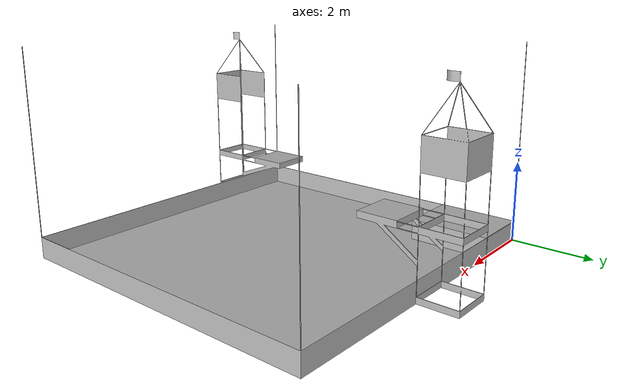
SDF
<?xml version='1.0'?>
<sdf version='1.9'>
  <model name='arena_spawn'>
    <link name='link_0'>
      <inertial>
        <mass>15</mass>
        <inertia>
          <ixx>2.0</ixx>
          <ixy>0.0</ixy>
          <ixz>0.0</ixz>
          <iyy>2.0</iyy>
          <iyz>0.0</iyz>
          <izz>2.0</izz>
        </inertia>
      </inertial>
      <self_collide>true</self_collide>
      <enable_wind>false</enable_wind>
      <kinematic>false</kinematic>
      <pose>0 0 0 0 0 0</pose>
      <visual name='visual'>
        <pose>8 0 0 0 0 9.422</pose>
        <geometry>
          <mesh>
            <uri>model://arena_spawn/meshes/Arena.obj</uri>
            <scale>1 1 1</scale>
          </mesh>
        </geometry>
        <transparency>0</transparency>
        <cast_shadows>true</cast_shadows>
      </visual>
      <collision name='collision'>
        <laser_retro>0</laser_retro>
        <max_contacts>10</max_contacts>
        <pose>8 0 0 0 0 9.422</pose>
        <geometry>
          <mesh>
            <uri>model://arena_spawn/meshes/Arena.obj</uri>
            <scale>1 1 1</scale>
          </mesh>
        </geometry>
        <surface>
          <friction>
            <ode>
              <mu>1</mu>
              <mu2>1</mu2>
              <fdir1>0 0 0</fdir1>
              <slip1>0</slip1>
              <slip2>0</slip2>
            </ode>
            <torsional>
              <coefficient>1</coefficient>
              <patch_radius>100</patch_radius>
              <surface_radius>100</surface_radius>
              <use_patch_radius>true</use_patch_radius>
              <ode>
                <slip>0</slip>
              </ode>
            </torsional>
          </friction>
          <bounce>
            <restitution_coefficient>0</restitution_coefficient>
            <threshold>1e+06</threshold>
          </bounce>
          <contact>
            <collide_without_contact>false</collide_without_contact>
            <collide_without_contact_bitmask>1</collide_without_contact_bitmask>
            <collide_bitmask>1</collide_bitmask>
            <ode>
              <soft_cfm>0</soft_cfm>
              <soft_erp>0.2</soft_erp>
              <kp>1e+13</kp>
              <kd>1</kd>
              <max_vel>0.01</max_vel>
              <min_depth>0</min_depth>
            </ode>
            <bullet>
              <split_impulse>true</split_impulse>
              <split_impulse_penetration_threshold>-0.01</split_impulse_penetration_threshold>
              <soft_cfm>0</soft_cfm>
              <soft_erp>0.2</soft_erp>
              <kp>1e+13</kp>
              <kd>1</kd>
            </bullet>
          </contact>
        </surface>
      </collision>
    </link>
    <link name='link_4'>
      <inertial>
        <mass>1</mass>
        <inertia>
          <ixx>0.1</ixx>
          <ixy>0.0</ixy>
          <ixz>0.0</ixz>
          <iyy>0.1</iyy>
          <iyz>0.0</iyz>
          <izz>0.1</izz>
        </inertia>
      </inertial>
      <self_collide>true</self_collide>
      <enable_wind>false</enable_wind>
      <kinematic>false</kinematic>
      <pose>0 0 0 0 0 0</pose>
      <visual name='visual'>
        <pose>8 0 0 0 0 9.422</pose>
        <geometry>
          <mesh>
            <uri>model://arena_spawn/meshes/high_base_left.obj</uri>
            <scale>1 1 1</scale>
          </mesh>
        </geometry>
        <transparency>0</transparency>
        <cast_shadows>true</cast_shadows>
      </visual>
      <collision name='collision'>
        <laser_retro>0</laser_retro>
        <max_contacts>10</max_contacts>
        <pose>8 0 0 0 0 9.422</pose>
        <geometry>
          <mesh>
            <uri>model://arena_spawn/meshes/high_base_left.obj</uri>
            <scale>1 1 1</scale>
          </mesh>
        </geometry>
        <surface>
          <friction>
            <ode>
              <mu>1</mu>
              <mu2>1</mu2>
              <fdir1>0 0 0</fdir1>
              <slip1>0</slip1>
              <slip2>0</slip2>
            </ode>
            <torsional>
              <coefficient>1</coefficient>
              <patch_radius>100</patch_radius>
              <surface_radius>100</surface_radius>
              <use_patch_radius>true</use_patch_radius>
              <ode>
                <slip>0</slip>
              </ode>
            </torsional>
          </friction>
          <bounce>
            <restitution_coefficient>0</restitution_coefficient>
            <threshold>1e+06</threshold>
          </bounce>
          <contact>
            <collide_without_contact>false</collide_without_contact>
            <collide_without_contact_bitmask>1</collide_without_contact_bitmask>
            <collide_bitmask>1</collide_bitmask>
            <ode>
              <soft_cfm>0</soft_cfm>
              <soft_erp>0.2</soft_erp>
              <kp>1e+13</kp>
              <kd>1</kd>
              <max_vel>0.01</max_vel>
              <min_depth>0</min_depth>
            </ode>
            <bullet>
              <split_impulse>true</split_impulse>
              <split_impulse_penetration_threshold>-0.01</split_impulse_penetration_threshold>
              <soft_cfm>0</soft_cfm>
              <soft_erp>0.2</soft_erp>
              <kp>1e+13</kp>
              <kd>1</kd>
            </bullet>
          </contact>
        </surface>
      </collision>
    </link>
    <link name='link_5'>
      <inertial>
        <mass>1</mass>
        <inertia>
          <ixx>0.1</ixx>
          <ixy>0.0</ixy>
          <ixz>0.0</ixz>
          <iyy>0.1</iyy>
          <iyz>0.0</iyz>
          <izz>0.1</izz>
        </inertia>
      </inertial>
      <self_collide>true</self_collide>
      <enable_wind>false</enable_wind>
      <kinematic>false</kinematic>
      <pose>0 0 0 0 0 0</pose>
      <visual name='visual'>
        <pose>8 0 0 0 0 9.422</pose>
        <geometry>
          <mesh>
            <uri>model://arena_spawn/meshes/high_base_right.obj</uri>
            <scale>1 1 1</scale>
          </mesh>
        </geometry>
        <transparency>0</transparency>
        <cast_shadows>true</cast_shadows>
      </visual>
      <collision name='collision'>
        <laser_retro>0</laser_retro>
        <max_contacts>10</max_contacts>
        <pose>8 0 0 0 0 9.422</pose>
        <geometry>
          <mesh>
            <uri>model://arena_spawn/meshes/high_base_right.obj</uri>
            <scale>1 1 1</scale>
          </mesh>
        </geometry>
        <surface>
          <friction>
            <ode>
              <mu>1</mu>
              <mu2>1</mu2>
              <fdir1>0 0 0</fdir1>
              <slip1>0</slip1>
              <slip2>0</slip2>
            </ode>
            <torsional>
              <coefficient>1</coefficient>
              <patch_radius>100</patch_radius>
              <surface_radius>100</surface_radius>
              <use_patch_radius>true</use_patch_radius>
              <ode>
                <slip>0</slip>
              </ode>
            </torsional>
          </friction>
          <bounce>
            <restitution_coefficient>0</restitution_coefficient>
            <threshold>1e+06</threshold>
          </bounce>
          <contact>
            <collide_without_contact>false</collide_without_contact>
            <collide_without_contact_bitmask>1</collide_without_contact_bitmask>
            <collide_bitmask>1</collide_bitmask>
            <ode>
              <soft_cfm>0</soft_cfm>
              <soft_erp>0.2</soft_erp>
              <kp>1e+13</kp>
              <kd>1</kd>
              <max_vel>0.01</max_vel>
              <min_depth>0</min_depth>
            </ode>
            <bullet>
              <split_impulse>true</split_impulse>
              <split_impulse_penetration_threshold>-0.01</split_impulse_penetration_threshold>
              <soft_cfm>0</soft_cfm>
              <soft_erp>0.2</soft_erp>
              <kp>1e+13</kp>
              <kd>1</kd>
            </bullet>
          </contact>
        </surface>
      </collision>
    </link>
    <static>true</static>
    <pose>0 0 0.0005 0 0 0</pose>
  </model>
  <static>true</static>
</sdf>
